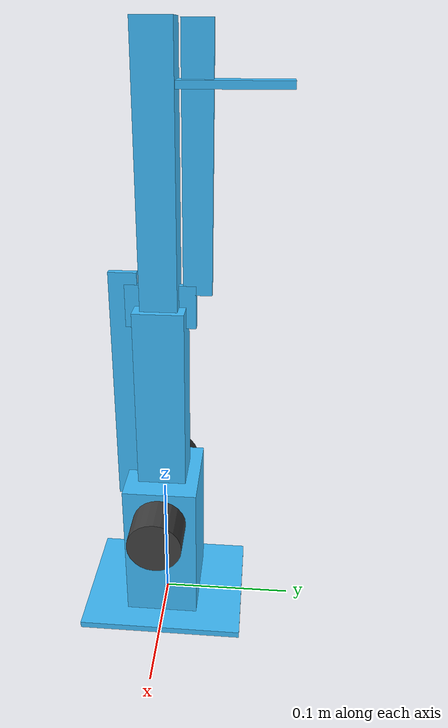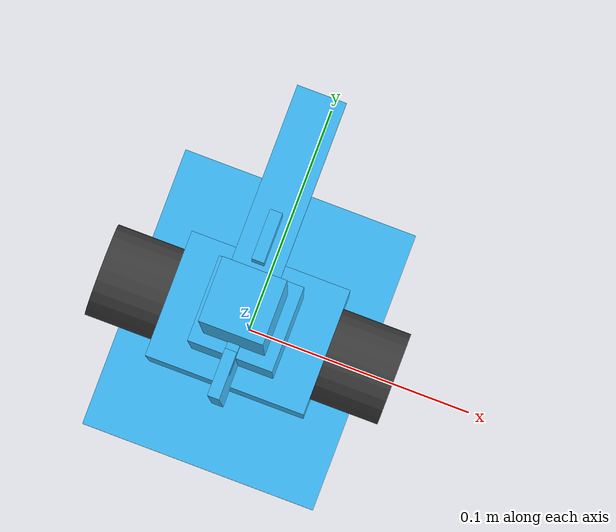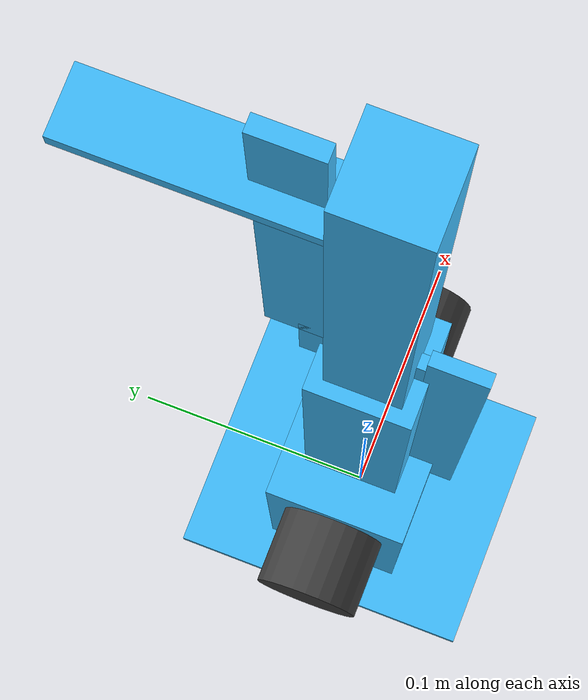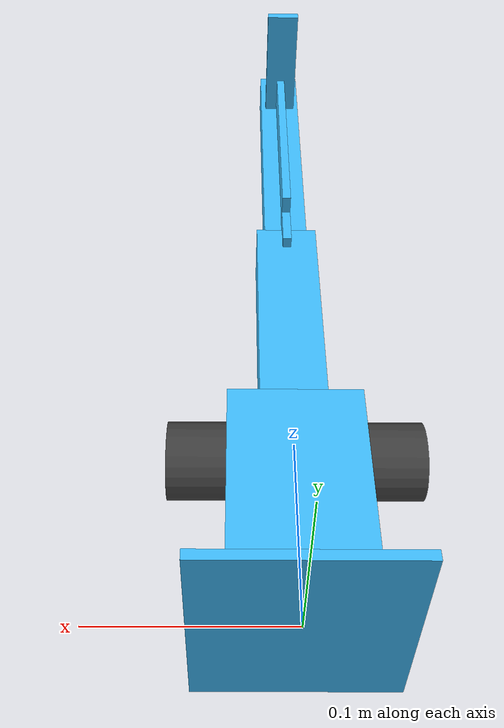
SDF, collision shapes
<sdf version='1.9'>
  <model name='dobot_arm_kickstarter'>
    <link name='baseLink'>
      <inertial>
        <pose>0 0 0 0 0 0</pose>
        <mass>0.5</mass>
        <inertia>
          <ixx>0.10000000000000001</ixx>
          <ixy>0</ixy>
          <ixz>0</ixz>
          <iyy>0.10000000000000001</iyy>
          <iyz>0</iyz>
          <izz>0.10000000000000001</izz>
        </inertia>
      </inertial>
      <collision name='baseLink_collision'>
        <pose>0 0 0 0 -1.5707963267948966 0</pose>
        <geometry>
          <box>
            <size>0.0050000000000000001 0.125 0.105</size>
          </box>
        </geometry>
      </collision>
      <visual name='baseLink_visual'>
        <pose>0 0 0 0 0 0</pose>
        <geometry>
          <mesh>
            <scale>1 1 1</scale>
            <uri>cad/Dobot/A3.stl</uri>
          </mesh>
        </geometry>
        <material>
          <diffuse>0.25 0.75000006 1 1</diffuse>
          <ambient>0.25 0.75000006 1 1</ambient>
        </material>
      </visual>
    </link>
    <joint name='joint_baseLink_childA' type='revolute'>
      <pose relative_to='baseLink'>0 0 0.059999999999999998 0 0 0</pose>
      <parent>baseLink</parent>
      <child>linkA</child>
      <axis>
        <xyz>0 0 1</xyz>
        <limit>
          <lower>-inf</lower>
          <upper>inf</upper>
        </limit>
        <dynamics>
          <damping>1</damping>
          <friction>0.0001</friction>
          <spring_reference>0</spring_reference>
          <spring_stiffness>0</spring_stiffness>
        </dynamics>
      </axis>
    </joint>
    <link name='linkA'>
      <pose relative_to='joint_baseLink_childA'>0 0 0 0 0 0</pose>
      <inertial>
        <pose>0 0 0 0 0 0</pose>
        <mass>0.29999999999999999</mass>
        <inertia>
          <ixx>0.048966668999999997</ixx>
          <ixy>0</ixy>
          <ixz>0</ixz>
          <iyy>0.046466667000000003</iyy>
          <iyz>0</iyz>
          <izz>0.0041666669000000002</izz>
        </inertia>
      </inertial>
      <collision name='linkA_collision'>
        <pose>0 0 0 0 0 0</pose>
        <geometry>
          <box>
            <size>0.070000000000000007 0.055 0.11</size>
          </box>
        </geometry>
      </collision>
      <visual name='linkA_visual'>
        <pose>0.032500000000000001 0 0 0 0 0</pose>
        <geometry>
          <mesh>
            <scale>1 1 1</scale>
            <uri>cad/Dobot/A1_2.stl</uri>
          </mesh>
        </geometry>
        <material>
          <diffuse>0.25 0.75000006 1 1</diffuse>
          <ambient>0.25 0.75000006 1 1</ambient>
        </material>
      </visual>
      <visual name='linkA_visual_1'>
        <pose>-0.032500000000000001 0 0 0 0 0</pose>
        <geometry>
          <mesh>
            <scale>1 1 1</scale>
            <uri>cad/Dobot/A1_2.stl</uri>
          </mesh>
        </geometry>
        <material>
          <diffuse>0.25 0.75000006 1 1</diffuse>
          <ambient>0.25 0.75000006 1 1</ambient>
        </material>
      </visual>
      <visual name='linkA_visual_2'>
        <pose>0.0050000000000000001 -0.047 0.01 0 0 0</pose>
        <geometry>
          <mesh>
            <scale>1 1 1</scale>
            <uri>cad/Dobot/A22.stl</uri>
          </mesh>
        </geometry>
        <material>
          <diffuse>0.25 0.75000006 1 1</diffuse>
          <ambient>0.25 0.75000006 1 1</ambient>
        </material>
      </visual>
      <visual name='linkA_visual_3'>
        <pose>0 -0.024500000000000001 -0.044999999999999998 0 0 0</pose>
        <geometry>
          <mesh>
            <scale>1 1 1</scale>
            <uri>cad/Dobot/A4.stl</uri>
          </mesh>
        </geometry>
        <material>
          <diffuse>0.25 0.75000006 1 1</diffuse>
          <ambient>0.25 0.75000006 1 1</ambient>
        </material>
      </visual>
    </link>
    <joint name='joint_linkAlinkA9' type='revolute'>
      <pose relative_to='linkA'>0 -0.025999999999999999 0.053999999999999999 0 0 0</pose>
      <parent>linkA</parent>
      <child>linkA9</child>
      <axis>
        <xyz>1 0 0</xyz>
        <limit>
          <lower>-inf</lower>
          <upper>inf</upper>
        </limit>
        <dynamics>
          <damping>1</damping>
          <friction>0.0001</friction>
          <spring_reference>0</spring_reference>
          <spring_stiffness>0</spring_stiffness>
        </dynamics>
      </axis>
    </joint>
    <link name='linkA9'>
      <pose relative_to='joint_linkAlinkA9'>0 0 0 0 0 0</pose>
      <inertial>
        <pose>0 0 0.074999999999999997 0 0 0</pose>
        <mass>0.10000000000000001</mass>
        <inertia>
          <ixx>0.048966668999999997</ixx>
          <ixy>0</ixy>
          <ixz>0</ixz>
          <iyy>0.046466667000000003</iyy>
          <iyz>0</iyz>
          <izz>0.0041666669000000002</izz>
        </inertia>
      </inertial>
      <collision name='linkA9_collision'>
        <pose>0 0 0.070000000000000007 0 0 0</pose>
        <geometry>
          <box>
            <size>0.0050000000000000001 0.02 0.17999999999999999</size>
          </box>
        </geometry>
      </collision>
      <visual name='linkA9_visual'>
        <pose>0 0 0.074999999999999997 0 0 0</pose>
        <geometry>
          <mesh>
            <scale>1 1 1</scale>
            <uri>cad/Dobot/A9.stl</uri>
          </mesh>
        </geometry>
        <material>
          <diffuse>0.25 0.75000006 1 1</diffuse>
          <ambient>0.25 0.75000006 1 1</ambient>
        </material>
      </visual>
    </link>
    <joint name='joint_linkAlinkB' type='revolute'>
      <pose relative_to='linkA'>0 0 0.040000000000000001 0 0 0</pose>
      <parent>linkA</parent>
      <child>linkB</child>
      <axis>
        <xyz>1 0 0</xyz>
        <limit>
          <lower>-inf</lower>
          <upper>inf</upper>
        </limit>
        <dynamics>
          <damping>1</damping>
          <friction>0.0001</friction>
          <spring_reference>0</spring_reference>
          <spring_stiffness>0</spring_stiffness>
        </dynamics>
      </axis>
    </joint>
    <link name='linkB'>
      <pose relative_to='joint_linkAlinkB'>0 0 0 0 0 0</pose>
      <inertial>
        <pose>0 0 0.074999999999999997 0 0 0</pose>
        <mass>0.10000000000000001</mass>
        <inertia>
          <ixx>0.048966668999999997</ixx>
          <ixy>0</ixy>
          <ixz>0</ixz>
          <iyy>0.046466667000000003</iyy>
          <iyz>0</iyz>
          <izz>0.0041666669000000002</izz>
        </inertia>
      </inertial>
      <collision name='linkB_collision'>
        <pose>0 0 0.074999999999999997 0 0 0</pose>
        <geometry>
          <box>
            <size>0.035999999999999997 0.035999999999999997 0.14999999999999999</size>
          </box>
        </geometry>
      </collision>
      <visual name='linkB_visual'>
        <pose>0.025000000000000001 -0.012 0.076999999999999999 1.5707959999999999 0 0</pose>
        <geometry>
          <mesh>
            <scale>1 1 1</scale>
            <uri>cad/Dobot/A12_13.stl</uri>
          </mesh>
        </geometry>
        <material>
          <diffuse>0.25 0.75000006 1 1</diffuse>
          <ambient>0.25 0.75000006 1 1</ambient>
        </material>
      </visual>
      <visual name='linkB_visual_1'>
        <pose>-0.025000000000000001 -0.012 0.076999999999999999 1.5707959999999999 0 0</pose>
        <geometry>
          <mesh>
            <scale>1 1 1</scale>
            <uri>cad/Dobot/A12_13.stl</uri>
          </mesh>
        </geometry>
        <material>
          <diffuse>0.25 0.75000006 1 1</diffuse>
          <ambient>0.25 0.75000006 1 1</ambient>
        </material>
      </visual>
    </link>
    <joint name='joint_linkBlinkC' type='revolute'>
      <pose relative_to='linkB'>0 0 0.14999999999999999 0 0 0</pose>
      <parent>linkB</parent>
      <child>linkC</child>
      <axis>
        <xyz>1 0 0</xyz>
        <limit>
          <lower>-inf</lower>
          <upper>inf</upper>
        </limit>
        <dynamics>
          <damping>1</damping>
          <friction>0.0001</friction>
          <spring_reference>0</spring_reference>
          <spring_stiffness>0</spring_stiffness>
        </dynamics>
      </axis>
    </joint>
    <link name='linkC'>
      <pose relative_to='joint_linkBlinkC'>0 0 0 0 0 0</pose>
      <inertial>
        <pose>0 0 0.080000000000000002 0 0 0</pose>
        <mass>0.10000000000000001</mass>
        <inertia>
          <ixx>0.048966668999999997</ixx>
          <ixy>0</ixy>
          <ixz>0</ixz>
          <iyy>0.046466667000000003</iyy>
          <iyz>0</iyz>
          <izz>0.0041666669000000002</izz>
        </inertia>
      </inertial>
      <collision name='linkC_collision'>
        <pose>0 0 0.074999999999999997 0 0 0</pose>
        <geometry>
          <box>
            <size>0.025999999999999999 0.025999999999999999 0.20999999999999999</size>
          </box>
        </geometry>
      </collision>
      <visual name='linkC_visual'>
        <pose>0.02 -0.0050000000000000001 0.070000000000000007 1.5707959999999999 0 0</pose>
        <geometry>
          <mesh>
            <scale>1 1 1</scale>
            <uri>cad/Dobot/A6_7.stl</uri>
          </mesh>
        </geometry>
        <material>
          <diffuse>0.25 0.75000006 1 1</diffuse>
          <ambient>0.25 0.75000006 1 1</ambient>
        </material>
      </visual>
      <visual name='linkC_visual_1'>
        <pose>-0.02 -0.0050000000000000001 0.070000000000000007 1.5707959999999999 0 0</pose>
        <geometry>
          <mesh>
            <scale>1 1 1</scale>
            <uri>cad/Dobot/A6_7.stl</uri>
          </mesh>
        </geometry>
        <material>
          <diffuse>0.25 0.75000006 1 1</diffuse>
          <ambient>0.25 0.75000006 1 1</ambient>
        </material>
      </visual>
    </link>
    <joint name='joint_linkClinkD' type='revolute'>
      <pose relative_to='linkC'>0 0 0.16 0 0 0</pose>
      <parent>linkC</parent>
      <child>linkD</child>
      <axis>
        <xyz>1 0 0</xyz>
        <limit>
          <lower>-inf</lower>
          <upper>inf</upper>
        </limit>
        <dynamics>
          <damping>1</damping>
          <friction>0.0001</friction>
          <spring_reference>0</spring_reference>
          <spring_stiffness>0</spring_stiffness>
        </dynamics>
      </axis>
    </joint>
    <link name='linkD'>
      <pose relative_to='joint_linkClinkD'>0 0 0 0 0 0</pose>
      <inertial>
        <pose>0 0 0.02 0 0 0</pose>
        <mass>0.10000000000000001</mass>
        <inertia>
          <ixx>0.048966668999999997</ixx>
          <ixy>0</ixy>
          <ixz>0</ixz>
          <iyy>0.046466667000000003</iyy>
          <iyz>0</iyz>
          <izz>0.0041666669000000002</izz>
        </inertia>
      </inertial>
      <collision name='linkD_collision'>
        <pose>0 0.044999999999999998 -0.017000000000000001 0 0 0</pose>
        <geometry>
          <box>
            <size>0.02 0.080000000000000002 0.0050000000000000001</size>
          </box>
        </geometry>
      </collision>
      <visual name='linkD_visual'>
        <pose>0 0.010999999999999999 0 0 0 0</pose>
        <geometry>
          <mesh>
            <scale>1 1 1</scale>
            <uri>cad/Dobot/A17.stl</uri>
          </mesh>
        </geometry>
        <material>
          <diffuse>0.25 0.75000006 1 1</diffuse>
          <ambient>0.25 0.75000006 1 1</ambient>
        </material>
      </visual>
      <visual name='linkD_visual_1'>
        <pose>0 0 0 0 0 0</pose>
        <geometry>
          <mesh>
            <scale>1 1 1</scale>
            <uri>cad/Dobot/A16.stl</uri>
          </mesh>
        </geometry>
        <material>
          <diffuse>0.25 0.75000006 1 1</diffuse>
          <ambient>0.25 0.75000006 1 1</ambient>
        </material>
      </visual>
    </link>
    <joint name='joint_linkBlinkC2' type='revolute'>
      <pose relative_to='linkB'>0 0 0.14999999999999999 0 0 0</pose>
      <parent>linkB</parent>
      <child>linkC2</child>
      <axis>
        <xyz>1 0 0</xyz>
        <limit>
          <lower>-inf</lower>
          <upper>inf</upper>
        </limit>
        <dynamics>
          <damping>1</damping>
          <friction>0.0001</friction>
          <spring_reference>0</spring_reference>
          <spring_stiffness>0</spring_stiffness>
        </dynamics>
      </axis>
    </joint>
    <link name='linkC2'>
      <pose relative_to='joint_linkBlinkC2'>0 0 0 0 0 0</pose>
      <inertial>
        <pose>0 0 0 0 0 0</pose>
        <mass>0.10000000000000001</mass>
        <inertia>
          <ixx>0.048966668999999997</ixx>
          <ixy>0</ixy>
          <ixz>0</ixz>
          <iyy>0.046466667000000003</iyy>
          <iyz>0</iyz>
          <izz>0.0041666669000000002</izz>
        </inertia>
      </inertial>
      <collision name='linkC2_collision'>
        <pose>0 0 0 0 0 0</pose>
        <geometry>
          <box>
            <size>0.0050000000000000001 0.050000000000000003 0.031</size>
          </box>
        </geometry>
      </collision>
      <visual name='linkC2_visual'>
        <pose>0 0 0 0 0 0</pose>
        <geometry>
          <mesh>
            <scale>1 1 1</scale>
            <uri>cad/Dobot/A11.stl</uri>
          </mesh>
        </geometry>
        <material>
          <diffuse>0.25 0.75000006 1 1</diffuse>
          <ambient>0.25 0.75000006 1 1</ambient>
        </material>
      </visual>
    </link>
    <joint name='joint_linkC2linkA10' type='revolute'>
      <pose relative_to='linkC2'>0 0.025999999999999999 0.014 0 0 0</pose>
      <parent>linkC2</parent>
      <child>linkA10</child>
      <axis>
        <xyz>1 0 0</xyz>
        <limit>
          <lower>-inf</lower>
          <upper>inf</upper>
        </limit>
        <dynamics>
          <damping>1</damping>
          <friction>0.0001</friction>
          <spring_reference>0</spring_reference>
          <spring_stiffness>0</spring_stiffness>
        </dynamics>
      </axis>
    </joint>
    <link name='linkA10'>
      <pose relative_to='joint_linkC2linkA10'>0 0 0 0 0 0</pose>
      <inertial>
        <pose>0 0 0.080000000000000002 0 0 0</pose>
        <mass>0.10000000000000001</mass>
        <inertia>
          <ixx>0.048966668999999997</ixx>
          <ixy>0</ixy>
          <ixz>0</ixz>
          <iyy>0.046466667000000003</iyy>
          <iyz>0</iyz>
          <izz>0.0041666669000000002</izz>
        </inertia>
      </inertial>
      <collision name='linkA10_collision'>
        <pose>0 0 0.080000000000000002 0 0 0</pose>
        <geometry>
          <box>
            <size>0.0050000000000000001 0.02 0.17000000000000001</size>
          </box>
        </geometry>
      </collision>
      <visual name='linkA10_visual'>
        <pose>0 0 0.080000000000000002 0 0 0</pose>
        <geometry>
          <mesh>
            <scale>1 1 1</scale>
            <uri>cad/Dobot/A10.stl</uri>
          </mesh>
        </geometry>
        <material>
          <diffuse>0.25 0.75000006 1 1</diffuse>
          <ambient>0.25 0.75000006 1 1</ambient>
        </material>
      </visual>
    </link>
    <joint name='joint_linkAmotorA' type='revolute'>
      <pose relative_to='linkA'>0.050000000000000003 0 0.029999999999999999 0 0 0</pose>
      <parent>linkA</parent>
      <child>motorA</child>
      <axis>
        <xyz>1 0 0</xyz>
        <limit>
          <lower>-inf</lower>
          <upper>inf</upper>
        </limit>
        <dynamics>
          <damping>1</damping>
          <friction>0.0001</friction>
          <spring_reference>0</spring_reference>
          <spring_stiffness>0</spring_stiffness>
        </dynamics>
      </axis>
    </joint>
    <link name='motorA'>
      <pose relative_to='joint_linkAmotorA'>0 0 0 0 0 0</pose>
      <inertial>
        <pose>0 0 0 0 1.5700000000004057 0</pose>
        <mass>0.10000000000000001</mass>
        <inertia>
          <ixx>0.048966668999999997</ixx>
          <ixy>0</ixy>
          <ixz>0</ixz>
          <iyy>0.046466667000000003</iyy>
          <iyz>0</iyz>
          <izz>0.0041666669000000002</izz>
        </inertia>
      </inertial>
      <collision name='motorA_collision'>
        <pose>0 0 0 0 1.5707963267948966 0</pose>
        <geometry>
          <cylinder>
            <length>0.029999999999999999</length>
            <radius>0.02</radius>
          </cylinder>
        </geometry>
      </collision>
      <visual name='motorA_visual'>
        <pose>0 0 0 0 1.5707963267948966 0</pose>
        <geometry>
          <cylinder>
            <length>0.029999999999999999</length>
            <radius>0.02</radius>
          </cylinder>
        </geometry>
        <material>
          <diffuse>0.25 0.25 0.25 1</diffuse>
          <ambient>0.25 0.25 0.25 1</ambient>
        </material>
      </visual>
    </link>
    <joint name='joint_linkAmotorB' type='revolute'>
      <pose relative_to='linkA'>-0.050000000000000003 0 0.029999999999999999 0 0 0</pose>
      <parent>linkA</parent>
      <child>motorB</child>
      <axis>
        <xyz>-1 0 0</xyz>
        <limit>
          <lower>-inf</lower>
          <upper>inf</upper>
        </limit>
        <dynamics>
          <damping>1</damping>
          <friction>0.0001</friction>
          <spring_reference>0</spring_reference>
          <spring_stiffness>0</spring_stiffness>
        </dynamics>
      </axis>
    </joint>
    <link name='motorB'>
      <pose relative_to='joint_linkAmotorB'>0 0 0 0 0 0</pose>
      <inertial>
        <pose>0 0 0 0 1.5700000000004057 0</pose>
        <mass>0.10000000000000001</mass>
        <inertia>
          <ixx>0.048966668999999997</ixx>
          <ixy>0</ixy>
          <ixz>0</ixz>
          <iyy>0.046466667000000003</iyy>
          <iyz>0</iyz>
          <izz>0.0041666669000000002</izz>
        </inertia>
      </inertial>
      <collision name='motorB_collision'>
        <pose>0 0 0 0 1.5707963267948966 0</pose>
        <geometry>
          <cylinder>
            <length>0.029999999999999999</length>
            <radius>0.02</radius>
          </cylinder>
        </geometry>
      </collision>
      <visual name='motorB_visual'>
        <pose>0 0 0 0 1.5707963267948966 0</pose>
        <geometry>
          <cylinder>
            <length>0.029999999999999999</length>
            <radius>0.02</radius>
          </cylinder>
        </geometry>
        <material>
          <diffuse>0.25 0.25 0.25 1</diffuse>
          <ambient>0.25 0.25 0.25 1</ambient>
        </material>
      </visual>
    </link>
  </model>
</sdf>
